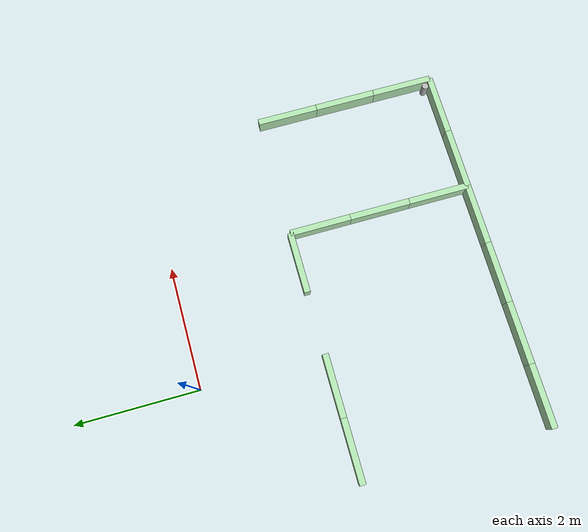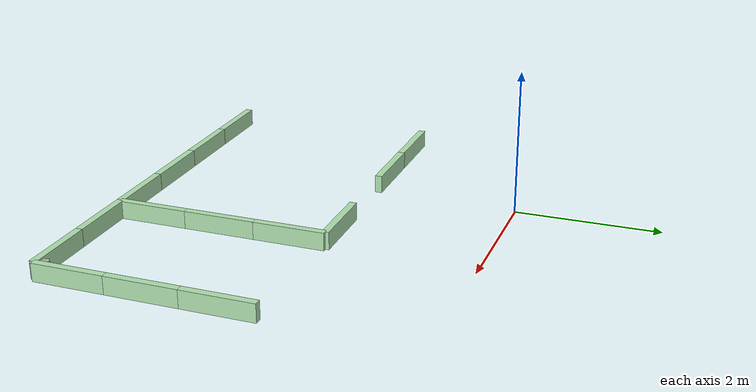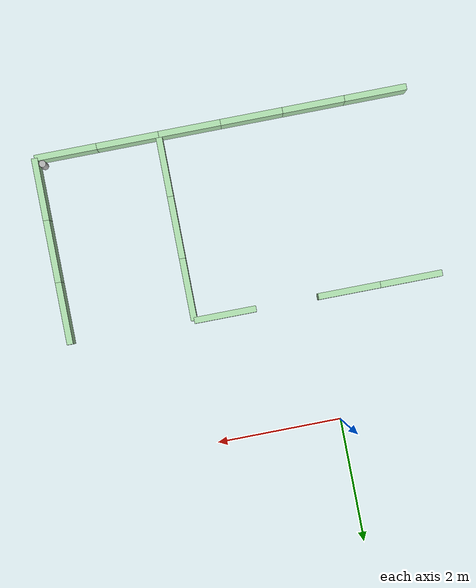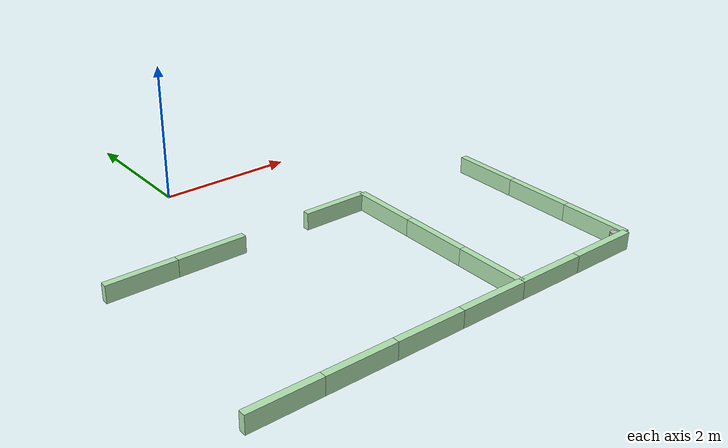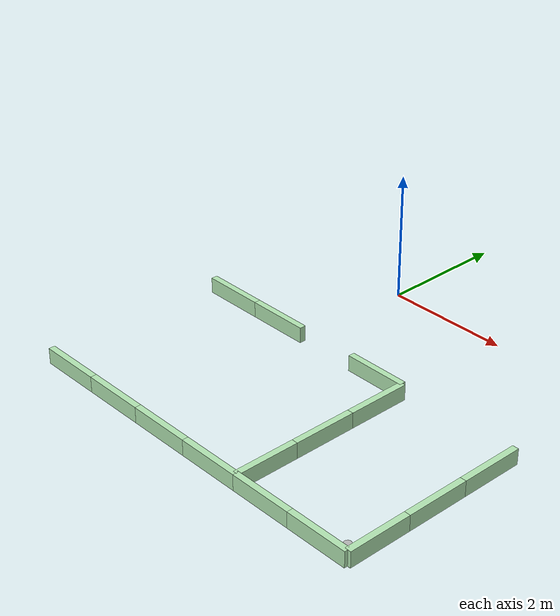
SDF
<sdf version="1.6">
 <world name="default">
  <model name="wall_100_25h_clone_clone_1">
   <link name="link">
    <inertial>
     <mass>1</mass>
     <inertia>
      <ixx>0.166667</ixx>
      <ixy>0</ixy>
      <ixz>0</ixz>
      <iyy>0.166667</iyy>
      <iyz>0</iyz>
      <izz>0.166667</izz>
     </inertia>
    </inertial>
    <visual name="visual">
     <geometry><box><size>1 0.1 0.25</size></box></geometry>
     <material>
      <script><name>Gazebo/Grey</name><uri>file://media/materials/scripts/gazebo.material</uri></script>
      <ambient>0.3 0.5 0.3 1</ambient>
      <diffuse>0.7 0.9 0.7 1</diffuse>
      <specular>0.01 0.02 0.01 1</specular>
      <emissive>0 0 0 1</emissive>
      <lighting>1</lighting>
      <shader type="vertex"><normal_map>__default__</normal_map></shader>
     </material>
    </visual>
    <collision name="collision">
     <geometry><box><size>1 0.1 0.25</size></box></geometry>
     <surface>
      <friction>
       <ode><mu>1</mu><mu2>1</mu2><fdir1>0 0 0</fdir1><slip1>0</slip1><slip2>0</slip2></ode>
       <torsional>
        <coefficient>1</coefficient>
        <patch_radius>0</patch_radius>
        <surface_radius>0</surface_radius>
        <use_patch_radius>1</use_patch_radius>
        <ode><slip>0</slip></ode>
       </torsional>
      </friction>
      <bounce><restitution_coefficient>0</restitution_coefficient><threshold>1e+06</threshold></bounce>
      <contact>
       <collide_without_contact>0</collide_without_contact>
       <collide_without_contact_bitmask>1</collide_without_contact_bitmask>
       <collide_bitmask>1</collide_bitmask>
       <ode>
        <soft_cfm>0</soft_cfm>
        <soft_erp>0.2</soft_erp>
        <kp>1e+13</kp>
        <kd>1</kd>
        <max_vel>0.01</max_vel>
        <min_depth>0</min_depth>
       </ode>
       <bullet>
        <split_impulse>1</split_impulse>
        <split_impulse_penetration_threshold>-0.01</split_impulse_penetration_threshold>
        <soft_cfm>0</soft_cfm>
        <soft_erp>0.2</soft_erp>
        <kp>1e+13</kp>
        <kd>1</kd>
       </bullet>
      </contact>
     </surface>
    </collision>
   </link>
   <static>1</static>
   <pose>1.5 -2 0.1252 0 -0 0</pose>
  </model>
  <model name="wall_100_25h_clone_clone_3">
   <link name="link">
    <inertial>
     <mass>1</mass>
     <inertia>
      <ixx>0.166667</ixx>
      <ixy>0</ixy>
      <ixz>0</ixz>
      <iyy>0.166667</iyy>
      <iyz>0</iyz>
      <izz>0.166667</izz>
     </inertia>
    </inertial>
    <visual name="visual">
     <geometry><box><size>1 0.1 0.25</size></box></geometry>
     <material>
      <script><name>Gazebo/Grey</name><uri>file://media/materials/scripts/gazebo.material</uri></script>
      <ambient>0.3 0.5 0.3 1</ambient>
      <diffuse>0.7 0.9 0.7 1</diffuse>
      <specular>0.01 0.02 0.01 1</specular>
      <emissive>0 0 0 1</emissive>
      <lighting>1</lighting>
      <shader type="vertex"><normal_map>__default__</normal_map></shader>
     </material>
    </visual>
    <collision name="collision">
     <geometry><box><size>1 0.1 0.25</size></box></geometry>
     <surface>
      <friction>
       <ode><mu>1</mu><mu2>1</mu2><fdir1>0 0 0</fdir1><slip1>0</slip1><slip2>0</slip2></ode>
       <torsional>
        <coefficient>1</coefficient>
        <patch_radius>0</patch_radius>
        <surface_radius>0</surface_radius>
        <use_patch_radius>1</use_patch_radius>
        <ode><slip>0</slip></ode>
       </torsional>
      </friction>
      <bounce><restitution_coefficient>0</restitution_coefficient><threshold>1e+06</threshold></bounce>
      <contact>
       <collide_without_contact>0</collide_without_contact>
       <collide_without_contact_bitmask>1</collide_without_contact_bitmask>
       <collide_bitmask>1</collide_bitmask>
       <ode>
        <soft_cfm>0</soft_cfm>
        <soft_erp>0.2</soft_erp>
        <kp>1e+13</kp>
        <kd>1</kd>
        <max_vel>0.01</max_vel>
        <min_depth>0</min_depth>
       </ode>
       <bullet>
        <split_impulse>1</split_impulse>
        <split_impulse_penetration_threshold>-0.01</split_impulse_penetration_threshold>
        <soft_cfm>0</soft_cfm>
        <soft_erp>0.2</soft_erp>
        <kp>1e+13</kp>
        <kd>1</kd>
       </bullet>
      </contact>
     </surface>
    </collision>
   </link>
   <static>1</static>
   <pose>-0.501577 -2 0.1252 0 -0 0</pose>
  </model>
  <model name="wall_100_25h_clone_clone_4">
   <link name="link">
    <inertial>
     <mass>1</mass>
     <inertia>
      <ixx>0.166667</ixx>
      <ixy>0</ixy>
      <ixz>0</ixz>
      <iyy>0.166667</iyy>
      <iyz>0</iyz>
      <izz>0.166667</izz>
     </inertia>
    </inertial>
    <visual name="visual">
     <geometry><box><size>1 0.1 0.25</size></box></geometry>
     <material>
      <script><name>Gazebo/Grey</name><uri>file://media/materials/scripts/gazebo.material</uri></script>
      <ambient>0.3 0.5 0.3 1</ambient>
      <diffuse>0.7 0.9 0.7 1</diffuse>
      <specular>0.01 0.02 0.01 1</specular>
      <emissive>0 0 0 1</emissive>
      <lighting>1</lighting>
      <shader type="vertex"><normal_map>__default__</normal_map></shader>
     </material>
    </visual>
    <collision name="collision">
     <geometry><box><size>1 0.1 0.25</size></box></geometry>
     <surface>
      <friction>
       <ode><mu>1</mu><mu2>1</mu2><fdir1>0 0 0</fdir1><slip1>0</slip1><slip2>0</slip2></ode>
       <torsional>
        <coefficient>1</coefficient>
        <patch_radius>0</patch_radius>
        <surface_radius>0</surface_radius>
        <use_patch_radius>1</use_patch_radius>
        <ode><slip>0</slip></ode>
       </torsional>
      </friction>
      <bounce><restitution_coefficient>0</restitution_coefficient><threshold>1e+06</threshold></bounce>
      <contact>
       <collide_without_contact>0</collide_without_contact>
       <collide_without_contact_bitmask>1</collide_without_contact_bitmask>
       <collide_bitmask>1</collide_bitmask>
       <ode>
        <soft_cfm>0</soft_cfm>
        <soft_erp>0.2</soft_erp>
        <kp>1e+13</kp>
        <kd>1</kd>
        <max_vel>0.01</max_vel>
        <min_depth>0</min_depth>
       </ode>
       <bullet>
        <split_impulse>1</split_impulse>
        <split_impulse_penetration_threshold>-0.01</split_impulse_penetration_threshold>
        <soft_cfm>0</soft_cfm>
        <soft_erp>0.2</soft_erp>
        <kp>1e+13</kp>
        <kd>1</kd>
       </bullet>
      </contact>
     </surface>
    </collision>
   </link>
   <static>1</static>
   <pose>-1.5 -2 0.1252 0 -0 0</pose>
  </model>
  <model name="wall_100_25h_clone_clone_5_clone_1">
   <link name="link">
    <inertial>
     <mass>1</mass>
     <inertia>
      <ixx>0.166667</ixx>
      <ixy>0</ixy>
      <ixz>0</ixz>
      <iyy>0.166667</iyy>
      <iyz>0</iyz>
      <izz>0.166667</izz>
     </inertia>
    </inertial>
    <visual name="visual">
     <geometry><box><size>1 0.1 0.25</size></box></geometry>
     <material>
      <script><name>Gazebo/Grey</name><uri>file://media/materials/scripts/gazebo.material</uri></script>
      <ambient>0.3 0.5 0.3 1</ambient>
      <diffuse>0.7 0.9 0.7 1</diffuse>
      <specular>0.01 0.02 0.01 1</specular>
      <emissive>0 0 0 1</emissive>
      <lighting>1</lighting>
      <shader type="vertex"><normal_map>__default__</normal_map></shader>
     </material>
    </visual>
    <collision name="collision">
     <geometry><box><size>1 0.1 0.25</size></box></geometry>
     <surface>
      <friction>
       <ode><mu>1</mu><mu2>1</mu2><fdir1>0 0 0</fdir1><slip1>0</slip1><slip2>0</slip2></ode>
       <torsional>
        <coefficient>1</coefficient>
        <patch_radius>0</patch_radius>
        <surface_radius>0</surface_radius>
        <use_patch_radius>1</use_patch_radius>
        <ode><slip>0</slip></ode>
       </torsional>
      </friction>
      <bounce><restitution_coefficient>0</restitution_coefficient><threshold>1e+06</threshold></bounce>
      <contact>
       <collide_without_contact>0</collide_without_contact>
       <collide_without_contact_bitmask>1</collide_without_contact_bitmask>
       <collide_bitmask>1</collide_bitmask>
       <ode>
        <soft_cfm>0</soft_cfm>
        <soft_erp>0.2</soft_erp>
        <kp>1e+13</kp>
        <kd>1</kd>
        <max_vel>0.01</max_vel>
        <min_depth>0</min_depth>
       </ode>
       <bullet>
        <split_impulse>1</split_impulse>
        <split_impulse_penetration_threshold>-0.01</split_impulse_penetration_threshold>
        <soft_cfm>0</soft_cfm>
        <soft_erp>0.2</soft_erp>
        <kp>1e+13</kp>
        <kd>1</kd>
       </bullet>
      </contact>
     </surface>
    </collision>
   </link>
   <static>1</static>
   <pose>4 -2.5 0.1252 0 0 -1.5708</pose>
  </model>
  <model name="wall_100_25h_clone_clone_5_clone_1_clone">
   <link name="link">
    <inertial>
     <mass>1</mass>
     <inertia>
      <ixx>0.166667</ixx>
      <ixy>0</ixy>
      <ixz>0</ixz>
      <iyy>0.166667</iyy>
      <iyz>0</iyz>
      <izz>0.166667</izz>
     </inertia>
    </inertial>
    <visual name="visual">
     <geometry><box><size>1 0.1 0.25</size></box></geometry>
     <material>
      <script><name>Gazebo/Grey</name><uri>file://media/materials/scripts/gazebo.material</uri></script>
      <ambient>0.3 0.5 0.3 1</ambient>
      <diffuse>0.7 0.9 0.7 1</diffuse>
      <specular>0.01 0.02 0.01 1</specular>
      <emissive>0 0 0 1</emissive>
      <lighting>1</lighting>
      <shader type="vertex"><normal_map>__default__</normal_map></shader>
     </material>
    </visual>
    <collision name="collision">
     <geometry><box><size>1 0.1 0.25</size></box></geometry>
     <surface>
      <friction>
       <ode><mu>1</mu><mu2>1</mu2><fdir1>0 0 0</fdir1><slip1>0</slip1><slip2>0</slip2></ode>
       <torsional>
        <coefficient>1</coefficient>
        <patch_radius>0</patch_radius>
        <surface_radius>0</surface_radius>
        <use_patch_radius>1</use_patch_radius>
        <ode><slip>0</slip></ode>
       </torsional>
      </friction>
      <bounce><restitution_coefficient>0</restitution_coefficient><threshold>1e+06</threshold></bounce>
      <contact>
       <collide_without_contact>0</collide_without_contact>
       <collide_without_contact_bitmask>1</collide_without_contact_bitmask>
       <collide_bitmask>1</collide_bitmask>
       <ode>
        <soft_cfm>0</soft_cfm>
        <soft_erp>0.2</soft_erp>
        <kp>1e+13</kp>
        <kd>1</kd>
        <max_vel>0.01</max_vel>
        <min_depth>0</min_depth>
       </ode>
       <bullet>
        <split_impulse>1</split_impulse>
        <split_impulse_penetration_threshold>-0.01</split_impulse_penetration_threshold>
        <soft_cfm>0</soft_cfm>
        <soft_erp>0.2</soft_erp>
        <kp>1e+13</kp>
        <kd>1</kd>
       </bullet>
      </contact>
     </surface>
    </collision>
   </link>
   <static>1</static>
   <pose>4 -3.5 0.1252 0 0 -1.5708</pose>
  </model>
  <model name="wall_100_25h_clone_clone_5_clone_1_clone_0">
   <link name="link">
    <inertial>
     <mass>1</mass>
     <inertia>
      <ixx>0.166667</ixx>
      <ixy>0</ixy>
      <ixz>0</ixz>
      <iyy>0.166667</iyy>
      <iyz>0</iyz>
      <izz>0.166667</izz>
     </inertia>
    </inertial>
    <visual name="visual">
     <geometry><box><size>1 0.1 0.25</size></box></geometry>
     <material>
      <script><name>Gazebo/Grey</name><uri>file://media/materials/scripts/gazebo.material</uri></script>
      <ambient>0.3 0.5 0.3 1</ambient>
      <diffuse>0.7 0.9 0.7 1</diffuse>
      <specular>0.01 0.02 0.01 1</specular>
      <emissive>0 0 0 1</emissive>
      <lighting>1</lighting>
      <shader type="vertex"><normal_map>__default__</normal_map></shader>
     </material>
    </visual>
    <collision name="collision">
     <geometry><box><size>1 0.1 0.25</size></box></geometry>
     <surface>
      <friction>
       <ode><mu>1</mu><mu2>1</mu2><fdir1>0 0 0</fdir1><slip1>0</slip1><slip2>0</slip2></ode>
       <torsional>
        <coefficient>1</coefficient>
        <patch_radius>0</patch_radius>
        <surface_radius>0</surface_radius>
        <use_patch_radius>1</use_patch_radius>
        <ode><slip>0</slip></ode>
       </torsional>
      </friction>
      <bounce><restitution_coefficient>0</restitution_coefficient><threshold>1e+06</threshold></bounce>
      <contact>
       <collide_without_contact>0</collide_without_contact>
       <collide_without_contact_bitmask>1</collide_without_contact_bitmask>
       <collide_bitmask>1</collide_bitmask>
       <ode>
        <soft_cfm>0</soft_cfm>
        <soft_erp>0.2</soft_erp>
        <kp>1e+13</kp>
        <kd>1</kd>
        <max_vel>0.01</max_vel>
        <min_depth>0</min_depth>
       </ode>
       <bullet>
        <split_impulse>1</split_impulse>
        <split_impulse_penetration_threshold>-0.01</split_impulse_penetration_threshold>
        <soft_cfm>0</soft_cfm>
        <soft_erp>0.2</soft_erp>
        <kp>1e+13</kp>
        <kd>1</kd>
       </bullet>
      </contact>
     </surface>
    </collision>
   </link>
   <static>1</static>
   <pose>4 -4.5 0.1252 0 0 -1.5708</pose>
  </model>
  <model name="wall_100_25h_clone_clone_1_clone">
   <link name="link">
    <inertial>
     <mass>1</mass>
     <inertia>
      <ixx>0.166667</ixx>
      <ixy>0</ixy>
      <ixz>0</ixz>
      <iyy>0.166667</iyy>
      <iyz>0</iyz>
      <izz>0.166667</izz>
     </inertia>
    </inertial>
    <visual name="visual">
     <geometry><box><size>1 0.1 0.25</size></box></geometry>
     <material>
      <script><name>Gazebo/Grey</name><uri>file://media/materials/scripts/gazebo.material</uri></script>
      <ambient>0.3 0.5 0.3 1</ambient>
      <diffuse>0.7 0.9 0.7 1</diffuse>
      <specular>0.01 0.02 0.01 1</specular>
      <emissive>0 0 0 1</emissive>
      <lighting>1</lighting>
      <shader type="vertex"><normal_map>__default__</normal_map></shader>
     </material>
    </visual>
    <collision name="collision">
     <geometry><box><size>1 0.1 0.25</size></box></geometry>
     <surface>
      <friction>
       <ode><mu>1</mu><mu2>1</mu2><fdir1>0 0 0</fdir1><slip1>0</slip1><slip2>0</slip2></ode>
       <torsional>
        <coefficient>1</coefficient>
        <patch_radius>0</patch_radius>
        <surface_radius>0</surface_radius>
        <use_patch_radius>1</use_patch_radius>
        <ode><slip>0</slip></ode>
       </torsional>
      </friction>
      <bounce><restitution_coefficient>0</restitution_coefficient><threshold>1e+06</threshold></bounce>
      <contact>
       <collide_without_contact>0</collide_without_contact>
       <collide_without_contact_bitmask>1</collide_without_contact_bitmask>
       <collide_bitmask>1</collide_bitmask>
       <ode>
        <soft_cfm>0</soft_cfm>
        <soft_erp>0.2</soft_erp>
        <kp>1e+13</kp>
        <kd>1</kd>
        <max_vel>0.01</max_vel>
        <min_depth>0</min_depth>
       </ode>
       <bullet>
        <split_impulse>1</split_impulse>
        <split_impulse_penetration_threshold>-0.01</split_impulse_penetration_threshold>
        <soft_cfm>0</soft_cfm>
        <soft_erp>0.2</soft_erp>
        <kp>1e+13</kp>
        <kd>1</kd>
       </bullet>
      </contact>
     </surface>
    </collision>
   </link>
   <static>1</static>
   <pose>3.5 -5 0.1252 0 -0 0</pose>
  </model>
  <model name="wall_100_25h_clone_clone_1_clone_0">
   <link name="link">
    <inertial>
     <mass>1</mass>
     <inertia>
      <ixx>0.166667</ixx>
      <ixy>0</ixy>
      <ixz>0</ixz>
      <iyy>0.166667</iyy>
      <iyz>0</iyz>
      <izz>0.166667</izz>
     </inertia>
    </inertial>
    <visual name="visual">
     <geometry><box><size>1 0.1 0.25</size></box></geometry>
     <material>
      <script><name>Gazebo/Grey</name><uri>file://media/materials/scripts/gazebo.material</uri></script>
      <ambient>0.3 0.5 0.3 1</ambient>
      <diffuse>0.7 0.9 0.7 1</diffuse>
      <specular>0.01 0.02 0.01 1</specular>
      <emissive>0 0 0 1</emissive>
      <lighting>1</lighting>
      <shader type="vertex"><normal_map>__default__</normal_map></shader>
     </material>
    </visual>
    <collision name="collision">
     <geometry><box><size>1 0.1 0.25</size></box></geometry>
     <surface>
      <friction>
       <ode><mu>1</mu><mu2>1</mu2><fdir1>0 0 0</fdir1><slip1>0</slip1><slip2>0</slip2></ode>
       <torsional>
        <coefficient>1</coefficient>
        <patch_radius>0</patch_radius>
        <surface_radius>0</surface_radius>
        <use_patch_radius>1</use_patch_radius>
        <ode><slip>0</slip></ode>
       </torsional>
      </friction>
      <bounce><restitution_coefficient>0</restitution_coefficient><threshold>1e+06</threshold></bounce>
      <contact>
       <collide_without_contact>0</collide_without_contact>
       <collide_without_contact_bitmask>1</collide_without_contact_bitmask>
       <collide_bitmask>1</collide_bitmask>
       <ode>
        <soft_cfm>0</soft_cfm>
        <soft_erp>0.2</soft_erp>
        <kp>1e+13</kp>
        <kd>1</kd>
        <max_vel>0.01</max_vel>
        <min_depth>0</min_depth>
       </ode>
       <bullet>
        <split_impulse>1</split_impulse>
        <split_impulse_penetration_threshold>-0.01</split_impulse_penetration_threshold>
        <soft_cfm>0</soft_cfm>
        <soft_erp>0.2</soft_erp>
        <kp>1e+13</kp>
        <kd>1</kd>
       </bullet>
      </contact>
     </surface>
    </collision>
   </link>
   <static>1</static>
   <pose>2.5 -5 0.1252 0 -0 0</pose>
  </model>
  <model name="wall_100_25h_clone_clone_1_clone_1">
   <link name="link">
    <inertial>
     <mass>1</mass>
     <inertia>
      <ixx>0.166667</ixx>
      <ixy>0</ixy>
      <ixz>0</ixz>
      <iyy>0.166667</iyy>
      <iyz>0</iyz>
      <izz>0.166667</izz>
     </inertia>
    </inertial>
    <visual name="visual">
     <geometry><box><size>1 0.1 0.25</size></box></geometry>
     <material>
      <script><name>Gazebo/Grey</name><uri>file://media/materials/scripts/gazebo.material</uri></script>
      <ambient>0.3 0.5 0.3 1</ambient>
      <diffuse>0.7 0.9 0.7 1</diffuse>
      <specular>0.01 0.02 0.01 1</specular>
      <emissive>0 0 0 1</emissive>
      <lighting>1</lighting>
      <shader type="vertex"><normal_map>__default__</normal_map></shader>
     </material>
    </visual>
    <collision name="collision">
     <geometry><box><size>1 0.1 0.25</size></box></geometry>
     <surface>
      <friction>
       <ode><mu>1</mu><mu2>1</mu2><fdir1>0 0 0</fdir1><slip1>0</slip1><slip2>0</slip2></ode>
       <torsional>
        <coefficient>1</coefficient>
        <patch_radius>0</patch_radius>
        <surface_radius>0</surface_radius>
        <use_patch_radius>1</use_patch_radius>
        <ode><slip>0</slip></ode>
       </torsional>
      </friction>
      <bounce><restitution_coefficient>0</restitution_coefficient><threshold>1e+06</threshold></bounce>
      <contact>
       <collide_without_contact>0</collide_without_contact>
       <collide_without_contact_bitmask>1</collide_without_contact_bitmask>
       <collide_bitmask>1</collide_bitmask>
       <ode>
        <soft_cfm>0</soft_cfm>
        <soft_erp>0.2</soft_erp>
        <kp>1e+13</kp>
        <kd>1</kd>
        <max_vel>0.01</max_vel>
        <min_depth>0</min_depth>
       </ode>
       <bullet>
        <split_impulse>1</split_impulse>
        <split_impulse_penetration_threshold>-0.01</split_impulse_penetration_threshold>
        <soft_cfm>0</soft_cfm>
        <soft_erp>0.2</soft_erp>
        <kp>1e+13</kp>
        <kd>1</kd>
       </bullet>
      </contact>
     </surface>
    </collision>
   </link>
   <static>1</static>
   <pose>1.5 -5 0.1252 0 -0 0</pose>
  </model>
  <model name="wall_100_25h_clone_clone_1_clone_2">
   <link name="link">
    <inertial>
     <mass>1</mass>
     <inertia>
      <ixx>0.166667</ixx>
      <ixy>0</ixy>
      <ixz>0</ixz>
      <iyy>0.166667</iyy>
      <iyz>0</iyz>
      <izz>0.166667</izz>
     </inertia>
    </inertial>
    <visual name="visual">
     <geometry><box><size>1 0.1 0.25</size></box></geometry>
     <material>
      <script><name>Gazebo/Grey</name><uri>file://media/materials/scripts/gazebo.material</uri></script>
      <ambient>0.3 0.5 0.3 1</ambient>
      <diffuse>0.7 0.9 0.7 1</diffuse>
      <specular>0.01 0.02 0.01 1</specular>
      <emissive>0 0 0 1</emissive>
      <lighting>1</lighting>
      <shader type="vertex"><normal_map>__default__</normal_map></shader>
     </material>
    </visual>
    <collision name="collision">
     <geometry><box><size>1 0.1 0.25</size></box></geometry>
     <surface>
      <friction>
       <ode><mu>1</mu><mu2>1</mu2><fdir1>0 0 0</fdir1><slip1>0</slip1><slip2>0</slip2></ode>
       <torsional>
        <coefficient>1</coefficient>
        <patch_radius>0</patch_radius>
        <surface_radius>0</surface_radius>
        <use_patch_radius>1</use_patch_radius>
        <ode><slip>0</slip></ode>
       </torsional>
      </friction>
      <bounce><restitution_coefficient>0</restitution_coefficient><threshold>1e+06</threshold></bounce>
      <contact>
       <collide_without_contact>0</collide_without_contact>
       <collide_without_contact_bitmask>1</collide_without_contact_bitmask>
       <collide_bitmask>1</collide_bitmask>
       <ode>
        <soft_cfm>0</soft_cfm>
        <soft_erp>0.2</soft_erp>
        <kp>1e+13</kp>
        <kd>1</kd>
        <max_vel>0.01</max_vel>
        <min_depth>0</min_depth>
       </ode>
       <bullet>
        <split_impulse>1</split_impulse>
        <split_impulse_penetration_threshold>-0.01</split_impulse_penetration_threshold>
        <soft_cfm>0</soft_cfm>
        <soft_erp>0.2</soft_erp>
        <kp>1e+13</kp>
        <kd>1</kd>
       </bullet>
      </contact>
     </surface>
    </collision>
   </link>
   <static>1</static>
   <pose>0.5 -5 0.1252 0 -0 0</pose>
  </model>
  <model name="wall_100_25h_clone_clone_1_clone_3">
   <link name="link">
    <inertial>
     <mass>1</mass>
     <inertia>
      <ixx>0.166667</ixx>
      <ixy>0</ixy>
      <ixz>0</ixz>
      <iyy>0.166667</iyy>
      <iyz>0</iyz>
      <izz>0.166667</izz>
     </inertia>
    </inertial>
    <visual name="visual">
     <geometry><box><size>1 0.1 0.25</size></box></geometry>
     <material>
      <script><name>Gazebo/Grey</name><uri>file://media/materials/scripts/gazebo.material</uri></script>
      <ambient>0.3 0.5 0.3 1</ambient>
      <diffuse>0.7 0.9 0.7 1</diffuse>
      <specular>0.01 0.02 0.01 1</specular>
      <emissive>0 0 0 1</emissive>
      <lighting>1</lighting>
      <shader type="vertex"><normal_map>__default__</normal_map></shader>
     </material>
    </visual>
    <collision name="collision">
     <geometry><box><size>1 0.1 0.25</size></box></geometry>
     <surface>
      <friction>
       <ode><mu>1</mu><mu2>1</mu2><fdir1>0 0 0</fdir1><slip1>0</slip1><slip2>0</slip2></ode>
       <torsional>
        <coefficient>1</coefficient>
        <patch_radius>0</patch_radius>
        <surface_radius>0</surface_radius>
        <use_patch_radius>1</use_patch_radius>
        <ode><slip>0</slip></ode>
       </torsional>
      </friction>
      <bounce><restitution_coefficient>0</restitution_coefficient><threshold>1e+06</threshold></bounce>
      <contact>
       <collide_without_contact>0</collide_without_contact>
       <collide_without_contact_bitmask>1</collide_without_contact_bitmask>
       <collide_bitmask>1</collide_bitmask>
       <ode>
        <soft_cfm>0</soft_cfm>
        <soft_erp>0.2</soft_erp>
        <kp>1e+13</kp>
        <kd>1</kd>
        <max_vel>0.01</max_vel>
        <min_depth>0</min_depth>
       </ode>
       <bullet>
        <split_impulse>1</split_impulse>
        <split_impulse_penetration_threshold>-0.01</split_impulse_penetration_threshold>
        <soft_cfm>0</soft_cfm>
        <soft_erp>0.2</soft_erp>
        <kp>1e+13</kp>
        <kd>1</kd>
       </bullet>
      </contact>
     </surface>
    </collision>
   </link>
   <static>1</static>
   <pose>-0.5 -5 0.1252 0 -0 0</pose>
  </model>
  <model name="wall_100_25h_clone_clone_1_clone_4">
   <link name="link">
    <inertial>
     <mass>1</mass>
     <inertia>
      <ixx>0.166667</ixx>
      <ixy>0</ixy>
      <ixz>0</ixz>
      <iyy>0.166667</iyy>
      <iyz>0</iyz>
      <izz>0.166667</izz>
     </inertia>
    </inertial>
    <visual name="visual">
     <geometry><box><size>1 0.1 0.25</size></box></geometry>
     <material>
      <script><name>Gazebo/Grey</name><uri>file://media/materials/scripts/gazebo.material</uri></script>
      <ambient>0.3 0.5 0.3 1</ambient>
      <diffuse>0.7 0.9 0.7 1</diffuse>
      <specular>0.01 0.02 0.01 1</specular>
      <emissive>0 0 0 1</emissive>
      <lighting>1</lighting>
      <shader type="vertex"><normal_map>__default__</normal_map></shader>
     </material>
    </visual>
    <collision name="collision">
     <geometry><box><size>1 0.1 0.25</size></box></geometry>
     <surface>
      <friction>
       <ode><mu>1</mu><mu2>1</mu2><fdir1>0 0 0</fdir1><slip1>0</slip1><slip2>0</slip2></ode>
       <torsional>
        <coefficient>1</coefficient>
        <patch_radius>0</patch_radius>
        <surface_radius>0</surface_radius>
        <use_patch_radius>1</use_patch_radius>
        <ode><slip>0</slip></ode>
       </torsional>
      </friction>
      <bounce><restitution_coefficient>0</restitution_coefficient><threshold>1e+06</threshold></bounce>
      <contact>
       <collide_without_contact>0</collide_without_contact>
       <collide_without_contact_bitmask>1</collide_without_contact_bitmask>
       <collide_bitmask>1</collide_bitmask>
       <ode>
        <soft_cfm>0</soft_cfm>
        <soft_erp>0.2</soft_erp>
        <kp>1e+13</kp>
        <kd>1</kd>
        <max_vel>0.01</max_vel>
        <min_depth>0</min_depth>
       </ode>
       <bullet>
        <split_impulse>1</split_impulse>
        <split_impulse_penetration_threshold>-0.01</split_impulse_penetration_threshold>
        <soft_cfm>0</soft_cfm>
        <soft_erp>0.2</soft_erp>
        <kp>1e+13</kp>
        <kd>1</kd>
       </bullet>
      </contact>
     </surface>
    </collision>
   </link>
   <static>1</static>
   <pose>-1.5 -5 0.1252 0 -0 0</pose>
  </model>
  <model name="wall_100_25h_clone_clone_5_clone_1_clone_0_clone">
   <link name="link">
    <inertial>
     <mass>1</mass>
     <inertia>
      <ixx>0.166667</ixx>
      <ixy>0</ixy>
      <ixz>0</ixz>
      <iyy>0.166667</iyy>
      <iyz>0</iyz>
      <izz>0.166667</izz>
     </inertia>
    </inertial>
    <visual name="visual">
     <geometry><box><size>1 0.1 0.25</size></box></geometry>
     <material>
      <script><name>Gazebo/Grey</name><uri>file://media/materials/scripts/gazebo.material</uri></script>
      <ambient>0.3 0.5 0.3 1</ambient>
      <diffuse>0.7 0.9 0.7 1</diffuse>
      <specular>0.01 0.02 0.01 1</specular>
      <emissive>0 0 0 1</emissive>
      <lighting>1</lighting>
      <shader type="vertex"><normal_map>__default__</normal_map></shader>
     </material>
    </visual>
    <collision name="collision">
     <geometry><box><size>1 0.1 0.25</size></box></geometry>
     <surface>
      <friction>
       <ode><mu>1</mu><mu2>1</mu2><fdir1>0 0 0</fdir1><slip1>0</slip1><slip2>0</slip2></ode>
       <torsional>
        <coefficient>1</coefficient>
        <patch_radius>0</patch_radius>
        <surface_radius>0</surface_radius>
        <use_patch_radius>1</use_patch_radius>
        <ode><slip>0</slip></ode>
       </torsional>
      </friction>
      <bounce><restitution_coefficient>0</restitution_coefficient><threshold>1e+06</threshold></bounce>
      <contact>
       <collide_without_contact>0</collide_without_contact>
       <collide_without_contact_bitmask>1</collide_without_contact_bitmask>
       <collide_bitmask>1</collide_bitmask>
       <ode>
        <soft_cfm>0</soft_cfm>
        <soft_erp>0.2</soft_erp>
        <kp>1e+13</kp>
        <kd>1</kd>
        <max_vel>0.01</max_vel>
        <min_depth>0</min_depth>
       </ode>
       <bullet>
        <split_impulse>1</split_impulse>
        <split_impulse_penetration_threshold>-0.01</split_impulse_penetration_threshold>
        <soft_cfm>0</soft_cfm>
        <soft_erp>0.2</soft_erp>
        <kp>1e+13</kp>
        <kd>1</kd>
       </bullet>
      </contact>
     </surface>
    </collision>
   </link>
   <static>1</static>
   <pose>2 -4.5 0.1252 0 0 -1.5708</pose>
  </model>
  <model name="wall_100_25h_clone_clone_5_clone_1_clone_0_clone_0">
   <link name="link">
    <inertial>
     <mass>1</mass>
     <inertia>
      <ixx>0.166667</ixx>
      <ixy>0</ixy>
      <ixz>0</ixz>
      <iyy>0.166667</iyy>
      <iyz>0</iyz>
      <izz>0.166667</izz>
     </inertia>
    </inertial>
    <visual name="visual">
     <geometry><box><size>1 0.1 0.25</size></box></geometry>
     <material>
      <script><name>Gazebo/Grey</name><uri>file://media/materials/scripts/gazebo.material</uri></script>
      <ambient>0.3 0.5 0.3 1</ambient>
      <diffuse>0.7 0.9 0.7 1</diffuse>
      <specular>0.01 0.02 0.01 1</specular>
      <emissive>0 0 0 1</emissive>
      <lighting>1</lighting>
      <shader type="vertex"><normal_map>__default__</normal_map></shader>
     </material>
    </visual>
    <collision name="collision">
     <geometry><box><size>1 0.1 0.25</size></box></geometry>
     <surface>
      <friction>
       <ode><mu>1</mu><mu2>1</mu2><fdir1>0 0 0</fdir1><slip1>0</slip1><slip2>0</slip2></ode>
       <torsional>
        <coefficient>1</coefficient>
        <patch_radius>0</patch_radius>
        <surface_radius>0</surface_radius>
        <use_patch_radius>1</use_patch_radius>
        <ode><slip>0</slip></ode>
       </torsional>
      </friction>
      <bounce><restitution_coefficient>0</restitution_coefficient><threshold>1e+06</threshold></bounce>
      <contact>
       <collide_without_contact>0</collide_without_contact>
       <collide_without_contact_bitmask>1</collide_without_contact_bitmask>
       <collide_bitmask>1</collide_bitmask>
       <ode>
        <soft_cfm>0</soft_cfm>
        <soft_erp>0.2</soft_erp>
        <kp>1e+13</kp>
        <kd>1</kd>
        <max_vel>0.01</max_vel>
        <min_depth>0</min_depth>
       </ode>
       <bullet>
        <split_impulse>1</split_impulse>
        <split_impulse_penetration_threshold>-0.01</split_impulse_penetration_threshold>
        <soft_cfm>0</soft_cfm>
        <soft_erp>0.2</soft_erp>
        <kp>1e+13</kp>
        <kd>1</kd>
       </bullet>
      </contact>
     </surface>
    </collision>
   </link>
   <static>1</static>
   <pose>2 -3.5 0.1252 0 0 -1.5708</pose>
  </model>
  <model name="wall_100_25h_clone_clone_5_clone_1_clone_0_clone_1">
   <link name="link">
    <inertial>
     <mass>1</mass>
     <inertia>
      <ixx>0.166667</ixx>
      <ixy>0</ixy>
      <ixz>0</ixz>
      <iyy>0.166667</iyy>
      <iyz>0</iyz>
      <izz>0.166667</izz>
     </inertia>
    </inertial>
    <visual name="visual">
     <geometry><box><size>1 0.1 0.25</size></box></geometry>
     <material>
      <script><name>Gazebo/Grey</name><uri>file://media/materials/scripts/gazebo.material</uri></script>
      <ambient>0.3 0.5 0.3 1</ambient>
      <diffuse>0.7 0.9 0.7 1</diffuse>
      <specular>0.01 0.02 0.01 1</specular>
      <emissive>0 0 0 1</emissive>
      <lighting>1</lighting>
      <shader type="vertex"><normal_map>__default__</normal_map></shader>
     </material>
    </visual>
    <collision name="collision">
     <geometry><box><size>1 0.1 0.25</size></box></geometry>
     <surface>
      <friction>
       <ode><mu>1</mu><mu2>1</mu2><fdir1>0 0 0</fdir1><slip1>0</slip1><slip2>0</slip2></ode>
       <torsional>
        <coefficient>1</coefficient>
        <patch_radius>0</patch_radius>
        <surface_radius>0</surface_radius>
        <use_patch_radius>1</use_patch_radius>
        <ode><slip>0</slip></ode>
       </torsional>
      </friction>
      <bounce><restitution_coefficient>0</restitution_coefficient><threshold>1e+06</threshold></bounce>
      <contact>
       <collide_without_contact>0</collide_without_contact>
       <collide_without_contact_bitmask>1</collide_without_contact_bitmask>
       <collide_bitmask>1</collide_bitmask>
       <ode>
        <soft_cfm>0</soft_cfm>
        <soft_erp>0.2</soft_erp>
        <kp>1e+13</kp>
        <kd>1</kd>
        <max_vel>0.01</max_vel>
        <min_depth>0</min_depth>
       </ode>
       <bullet>
        <split_impulse>1</split_impulse>
        <split_impulse_penetration_threshold>-0.01</split_impulse_penetration_threshold>
        <soft_cfm>0</soft_cfm>
        <soft_erp>0.2</soft_erp>
        <kp>1e+13</kp>
        <kd>1</kd>
       </bullet>
      </contact>
     </surface>
    </collision>
   </link>
   <static>1</static>
   <pose>2 -2.5 0.1252 0 0 -1.5708</pose>
  </model>
  <model name="beer">
   <link name="link">
    <pose>0 0 0.115 0 -0 0</pose>
    <inertial>
     <mass>0.39</mass>
     <inertia><ixx>0.00058</ixx><ixy>0</ixy><ixz>0</ixz><iyy>0.00058</iyy><iyz>0</iyz><izz>0.00019</izz></inertia>
    </inertial>
    <collision name="collision">
     <geometry><cylinder><radius>0.055</radius><length>0.23</length></cylinder></geometry>
    </collision>
    <visual name="visual">
     <geometry><cylinder><radius>0.055</radius><length>0.23</length></cylinder></geometry>
     <material>
      <script>
       <uri>model://beer/materials/scripts</uri>
       <uri>model://beer/materials/textures</uri>
       <name>Beer/Diffuse</name>
      </script>
     </material>
    </visual>
   </link>
   <pose>3.89265 -4.8949 -0.00088 5e-05 -1e-05 -6.9e-05</pose>
  </model>
 </world>
</sdf>
